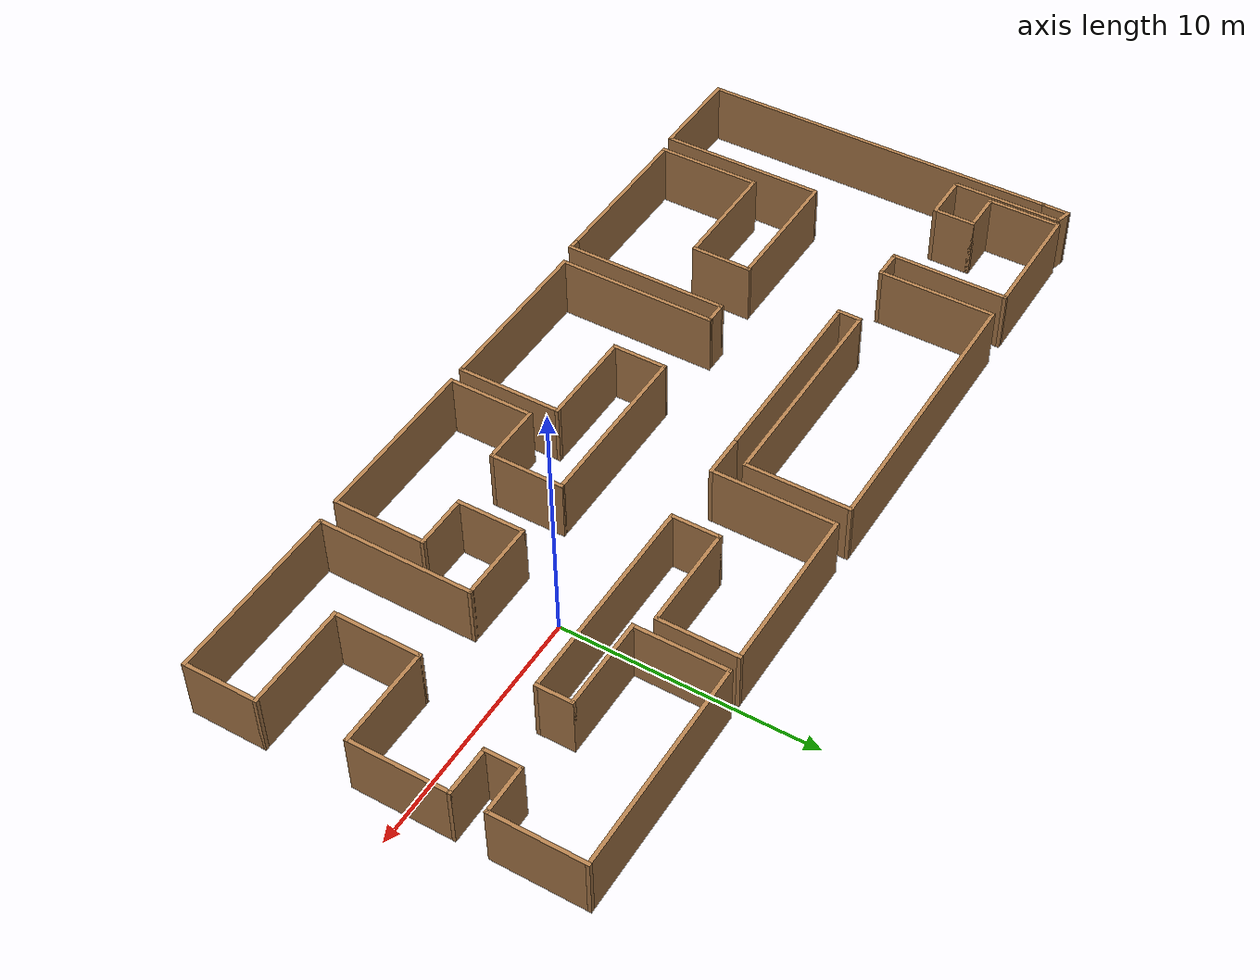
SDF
<?xml version='1.0'?>
<sdf version='1.6'>
  <model name='eight_comodos'>
    <pose frame=''>-8.40626 -0.864055 0 0 -0 0</pose>
    <link name='Wall_1'>
      <collision name='Wall_1_Collision'>
        <geometry>
          <box>
            <size>14.75 0.15 2.5</size>
          </box>
        </geometry>
        <pose frame=''>0 0 1.25 0 -0 0</pose>
      </collision>
      <visual name='Wall_1_Visual'>
        <pose frame=''>0 0 1.25 0 -0 0</pose>
        <geometry>
          <box>
            <size>14.75 0.15 2.5</size>
          </box>
        </geometry>
        <material>
          <script>
            <uri>file://media/materials/scripts/gazebo.material</uri>
            <name>Gazebo/Wood</name>
          </script>
          <ambient>1 1 1 1</ambient>
        </material>
        <meta>
          <layer>0</layer>
        </meta>
      </visual>
      <pose frame=''>-17.4243 -0.536073 0 0 -0 -1.5708</pose>
    </link>
    <link name='Wall_10'>
      <collision name='Wall_10_Collision'>
        <geometry>
          <box>
            <size>0.5 0.15 2.5</size>
          </box>
        </geometry>
        <pose frame=''>0 0 1.25 0 -0 0</pose>
      </collision>
      <visual name='Wall_10_Visual'>
        <pose frame=''>0 0 1.25 0 -0 0</pose>
        <geometry>
          <box>
            <size>0.5 0.15 2.5</size>
          </box>
        </geometry>
        <material>
          <script>
            <uri>file://media/materials/scripts/gazebo.material</uri>
            <name>Gazebo/Wood</name>
          </script>
          <ambient>1 1 1 1</ambient>
        </material>
        <meta>
          <layer>0</layer>
        </meta>
      </visual>
      <pose frame=''>-6.04928 -7.68607 0 0 -0 0</pose>
    </link>
    <link name='Wall_11'>
      <collision name='Wall_11_Collision'>
        <geometry>
          <box>
            <size>6.75 0.15 2.5</size>
          </box>
        </geometry>
        <pose frame=''>0 0 1.25 0 -0 0</pose>
      </collision>
      <visual name='Wall_11_Visual'>
        <pose frame=''>0 0 1.25 0 -0 0</pose>
        <geometry>
          <box>
            <size>6.75 0.15 2.5</size>
          </box>
        </geometry>
        <material>
          <script>
            <uri>file://media/materials/scripts/gazebo.material</uri>
            <name>Gazebo/Wood</name>
          </script>
          <ambient>1 1 1 1</ambient>
        </material>
        <meta>
          <layer>0</layer>
        </meta>
      </visual>
      <pose frame=''>-5.87428 -4.38607 0 0 -0 1.5708</pose>
    </link>
    <link name='Wall_12'>
      <collision name='Wall_12_Collision'>
        <geometry>
          <box>
            <size>1 0.15 2.5</size>
          </box>
        </geometry>
        <pose frame=''>0 0 1.25 0 -0 0</pose>
      </collision>
      <visual name='Wall_12_Visual'>
        <pose frame=''>0 0 1.25 0 -0 0</pose>
        <geometry>
          <box>
            <size>1 0.15 2.5</size>
          </box>
        </geometry>
        <material>
          <script>
            <uri>file://media/materials/scripts/gazebo.material</uri>
            <name>Gazebo/Wood</name>
          </script>
          <ambient>1 1 1 1</ambient>
        </material>
        <meta>
          <layer>0</layer>
        </meta>
      </visual>
      <pose frame=''>-5.44928 -1.08607 0 0 -0 0</pose>
    </link>
    <link name='Wall_13'>
      <collision name='Wall_13_Collision'>
        <geometry>
          <box>
            <size>6.5 0.15 2.5</size>
          </box>
        </geometry>
        <pose frame=''>0 0 1.25 0 -0 0</pose>
      </collision>
      <visual name='Wall_13_Visual'>
        <pose frame=''>0 0 1.25 0 -0 0</pose>
        <geometry>
          <box>
            <size>6.5 0.15 2.5</size>
          </box>
        </geometry>
        <material>
          <script>
            <uri>file://media/materials/scripts/gazebo.material</uri>
            <name>Gazebo/Wood</name>
          </script>
          <ambient>1 1 1 1</ambient>
        </material>
        <meta>
          <layer>0</layer>
        </meta>
      </visual>
      <pose frame=''>-5.02428 -4.26107 0 0 -0 -1.5708</pose>
    </link>
    <link name='Wall_14'>
      <collision name='Wall_14_Collision'>
        <geometry>
          <box>
            <size>7 0.15 2.5</size>
          </box>
        </geometry>
        <pose frame=''>0 0 1.25 0 -0 0</pose>
      </collision>
      <visual name='Wall_14_Visual'>
        <pose frame=''>0 0 1.25 0 -0 0</pose>
        <geometry>
          <box>
            <size>7 0.15 2.5</size>
          </box>
        </geometry>
        <material>
          <script>
            <uri>file://media/materials/scripts/gazebo.material</uri>
            <name>Gazebo/Wood</name>
          </script>
          <ambient>1 1 1 1</ambient>
        </material>
        <meta>
          <layer>0</layer>
        </meta>
      </visual>
      <pose frame=''>-1.59928 -7.43607 0 0 -0 0</pose>
    </link>
    <link name='Wall_15'>
      <collision name='Wall_15_Collision'>
        <geometry>
          <box>
            <size>4.25 0.15 2.5</size>
          </box>
        </geometry>
        <pose frame=''>0 0 1.25 0 -0 0</pose>
      </collision>
      <visual name='Wall_15_Visual'>
        <pose frame=''>0 0 1.25 0 -0 0</pose>
        <geometry>
          <box>
            <size>4.25 0.15 2.5</size>
          </box>
        </geometry>
        <material>
          <script>
            <uri>file://media/materials/scripts/gazebo.material</uri>
            <name>Gazebo/Wood</name>
          </script>
          <ambient>1 1 1 1</ambient>
        </material>
        <meta>
          <layer>0</layer>
        </meta>
      </visual>
      <pose frame=''>1.82572 -5.38607 0 0 -0 1.5708</pose>
    </link>
    <link name='Wall_16'>
      <collision name='Wall_16_Collision'>
        <geometry>
          <box>
            <size>4 0.15 2.5</size>
          </box>
        </geometry>
        <pose frame=''>0 0 1.25 0 -0 0</pose>
      </collision>
      <visual name='Wall_16_Visual'>
        <pose frame=''>0 0 1.25 0 -0 0</pose>
        <geometry>
          <box>
            <size>4 0.15 2.5</size>
          </box>
        </geometry>
        <material>
          <script>
            <uri>file://media/materials/scripts/gazebo.material</uri>
            <name>Gazebo/Wood</name>
          </script>
          <ambient>1 1 1 1</ambient>
        </material>
        <meta>
          <layer>0</layer>
        </meta>
      </visual>
      <pose frame=''>-0.09928 -3.33607 0 0 -0 3.14159</pose>
    </link>
    <link name='Wall_17'>
      <collision name='Wall_17_Collision'>
        <geometry>
          <box>
            <size>2.25 0.15 2.5</size>
          </box>
        </geometry>
        <pose frame=''>0 0 1.25 0 -0 0</pose>
      </collision>
      <visual name='Wall_17_Visual'>
        <pose frame=''>0 0 1.25 0 -0 0</pose>
        <geometry>
          <box>
            <size>2.25 0.15 2.5</size>
          </box>
        </geometry>
        <material>
          <script>
            <uri>file://media/materials/scripts/gazebo.material</uri>
            <name>Gazebo/Wood</name>
          </script>
          <ambient>1 1 1 1</ambient>
        </material>
        <meta>
          <layer>0</layer>
        </meta>
      </visual>
      <pose frame=''>-2.02428 -2.28607 0 0 -0 1.5708</pose>
    </link>
    <link name='Wall_18'>
      <collision name='Wall_18_Collision'>
        <geometry>
          <box>
            <size>7 0.15 2.5</size>
          </box>
        </geometry>
        <pose frame=''>0 0 1.25 0 -0 0</pose>
      </collision>
      <visual name='Wall_18_Visual'>
        <pose frame=''>0 0 1.25 0 -0 0</pose>
        <geometry>
          <box>
            <size>7 0.15 2.5</size>
          </box>
        </geometry>
        <material>
          <script>
            <uri>file://media/materials/scripts/gazebo.material</uri>
            <name>Gazebo/Wood</name>
          </script>
          <ambient>1 1 1 1</ambient>
        </material>
        <meta>
          <layer>0</layer>
        </meta>
      </visual>
      <pose frame=''>1.40072 -1.23607 0 0 -0 0</pose>
    </link>
    <link name='Wall_19'>
      <collision name='Wall_19_Collision'>
        <geometry>
          <box>
            <size>3 0.15 2.5</size>
          </box>
        </geometry>
        <pose frame=''>0 0 1.25 0 -0 0</pose>
      </collision>
      <visual name='Wall_19_Visual'>
        <pose frame=''>0 0 1.25 0 -0 0</pose>
        <geometry>
          <box>
            <size>3 0.15 2.5</size>
          </box>
        </geometry>
        <material>
          <script>
            <uri>file://media/materials/scripts/gazebo.material</uri>
            <name>Gazebo/Wood</name>
          </script>
          <ambient>1 1 1 1</ambient>
        </material>
        <meta>
          <layer>0</layer>
        </meta>
      </visual>
      <pose frame=''>4.82572 -2.66107 0 0 -0 -1.5708</pose>
    </link>
    <link name='Wall_2'>
      <collision name='Wall_2_Collision'>
        <geometry>
          <box>
            <size>4 0.15 2.5</size>
          </box>
        </geometry>
        <pose frame=''>0 0 1.25 0 -0 0</pose>
      </collision>
      <visual name='Wall_2_Visual'>
        <pose frame=''>0 0 1.25 0 -0 0</pose>
        <geometry>
          <box>
            <size>4 0.15 2.5</size>
          </box>
        </geometry>
        <material>
          <script>
            <uri>file://media/materials/scripts/gazebo.material</uri>
            <name>Gazebo/Wood</name>
          </script>
          <ambient>1 1 1 1</ambient>
        </material>
        <meta>
          <layer>0</layer>
        </meta>
      </visual>
      <pose frame=''>-15.4993 -7.83607 0 0 -0 0</pose>
    </link>
    <link name='Wall_20'>
      <collision name='Wall_20_Collision'>
        <geometry>
          <box>
            <size>2.5 0.15 2.5</size>
          </box>
        </geometry>
        <pose frame=''>0 0 1.25 0 -0 0</pose>
      </collision>
      <visual name='Wall_20_Visual'>
        <pose frame=''>0 0 1.25 0 -0 0</pose>
        <geometry>
          <box>
            <size>2.5 0.15 2.5</size>
          </box>
        </geometry>
        <material>
          <script>
            <uri>file://media/materials/scripts/gazebo.material</uri>
            <name>Gazebo/Wood</name>
          </script>
          <ambient>1 1 1 1</ambient>
        </material>
        <meta>
          <layer>0</layer>
        </meta>
      </visual>
      <pose frame=''>3.65072 -4.08607 0 0 -0 3.14159</pose>
    </link>
    <link name='Wall_21'>
      <collision name='Wall_21_Collision'>
        <geometry>
          <box>
            <size>3.5 0.15 2.5</size>
          </box>
        </geometry>
        <pose frame=''>0 0 1.25 0 -0 0</pose>
      </collision>
      <visual name='Wall_21_Visual'>
        <pose frame=''>0 0 1.25 0 -0 0</pose>
        <geometry>
          <box>
            <size>3.5 0.15 2.5</size>
          </box>
        </geometry>
        <material>
          <script>
            <uri>file://media/materials/scripts/gazebo.material</uri>
            <name>Gazebo/Wood</name>
          </script>
          <ambient>1 1 1 1</ambient>
        </material>
        <meta>
          <layer>0</layer>
        </meta>
      </visual>
      <pose frame=''>2.47572 -5.76107 0 0 -0 -1.5708</pose>
    </link>
    <link name='Wall_22'>
      <collision name='Wall_22_Collision'>
        <geometry>
          <box>
            <size>7 0.15 2.5</size>
          </box>
        </geometry>
        <pose frame=''>0 0 1.25 0 -0 0</pose>
      </collision>
      <visual name='Wall_22_Visual'>
        <pose frame=''>0 0 1.25 0 -0 0</pose>
        <geometry>
          <box>
            <size>7 0.15 2.5</size>
          </box>
        </geometry>
        <material>
          <script>
            <uri>file://media/materials/scripts/gazebo.material</uri>
            <name>Gazebo/Wood</name>
          </script>
          <ambient>1 1 1 1</ambient>
        </material>
        <meta>
          <layer>0</layer>
        </meta>
      </visual>
      <pose frame=''>5.90072 -7.43607 0 0 -0 0</pose>
    </link>
    <link name='Wall_23'>
      <collision name='Wall_23_Collision'>
        <geometry>
          <box>
            <size>3.75 0.15 2.5</size>
          </box>
        </geometry>
        <pose frame=''>0 0 1.25 0 -0 0</pose>
      </collision>
      <visual name='Wall_23_Visual'>
        <pose frame=''>0 0 1.25 0 -0 0</pose>
        <geometry>
          <box>
            <size>3.75 0.15 2.5</size>
          </box>
        </geometry>
        <material>
          <script>
            <uri>file://media/materials/scripts/gazebo.material</uri>
            <name>Gazebo/Wood</name>
          </script>
          <ambient>1 1 1 1</ambient>
        </material>
        <meta>
          <layer>0</layer>
        </meta>
      </visual>
      <pose frame=''>9.32572 -5.63607 0 0 -0 1.5708</pose>
    </link>
    <link name='Wall_24'>
      <collision name='Wall_24_Collision'>
        <geometry>
          <box>
            <size>2.25 0.15 2.5</size>
          </box>
        </geometry>
        <pose frame=''>0 0 1.25 0 -0 0</pose>
      </collision>
      <visual name='Wall_24_Visual'>
        <pose frame=''>0 0 1.25 0 -0 0</pose>
        <geometry>
          <box>
            <size>2.25 0.15 2.5</size>
          </box>
        </geometry>
        <material>
          <script>
            <uri>file://media/materials/scripts/gazebo.material</uri>
            <name>Gazebo/Wood</name>
          </script>
          <ambient>1 1 1 1</ambient>
        </material>
        <meta>
          <layer>0</layer>
        </meta>
      </visual>
      <pose frame=''>8.27572 -3.83607 0 0 -0 3.14159</pose>
    </link>
    <link name='Wall_25'>
      <collision name='Wall_25_Collision'>
        <geometry>
          <box>
            <size>2.75 0.15 2.5</size>
          </box>
        </geometry>
        <pose frame=''>0 0 1.25 0 -0 0</pose>
      </collision>
      <visual name='Wall_25_Visual'>
        <pose frame=''>0 0 1.25 0 -0 0</pose>
        <geometry>
          <box>
            <size>2.75 0.15 2.5</size>
          </box>
        </geometry>
        <material>
          <script>
            <uri>file://media/materials/scripts/gazebo.material</uri>
            <name>Gazebo/Wood</name>
          </script>
          <ambient>1 1 1 1</ambient>
        </material>
        <meta>
          <layer>0</layer>
        </meta>
      </visual>
      <pose frame=''>7.22572 -2.53607 0 0 -0 1.5708</pose>
    </link>
    <link name='Wall_26'>
      <collision name='Wall_26_Collision'>
        <geometry>
          <box>
            <size>3.25 0.15 2.5</size>
          </box>
        </geometry>
        <pose frame=''>0 0 1.25 0 -0 0</pose>
      </collision>
      <visual name='Wall_26_Visual'>
        <pose frame=''>0 0 1.25 0 -0 0</pose>
        <geometry>
          <box>
            <size>3.25 0.15 2.5</size>
          </box>
        </geometry>
        <material>
          <script>
            <uri>file://media/materials/scripts/gazebo.material</uri>
            <name>Gazebo/Wood</name>
          </script>
          <ambient>1 1 1 1</ambient>
        </material>
        <meta>
          <layer>0</layer>
        </meta>
      </visual>
      <pose frame=''>8.77572 -1.23607 0 0 -0 0</pose>
    </link>
    <link name='Wall_27'>
      <collision name='Wall_27_Collision'>
        <geometry>
          <box>
            <size>6.25 0.15 2.5</size>
          </box>
        </geometry>
        <pose frame=''>0 0 1.25 0 -0 0</pose>
      </collision>
      <visual name='Wall_27_Visual'>
        <pose frame=''>0 0 1.25 0 -0 0</pose>
        <geometry>
          <box>
            <size>6.25 0.15 2.5</size>
          </box>
        </geometry>
        <material>
          <script>
            <uri>file://media/materials/scripts/gazebo.material</uri>
            <name>Gazebo/Wood</name>
          </script>
          <ambient>1 1 1 1</ambient>
        </material>
        <meta>
          <layer>0</layer>
        </meta>
      </visual>
      <pose frame=''>10.3257 -4.28607 0 0 -0 -1.5708</pose>
    </link>
    <link name='Wall_28'>
      <collision name='Wall_28_Collision'>
        <geometry>
          <box>
            <size>7.25 0.15 2.5</size>
          </box>
        </geometry>
        <pose frame=''>0 0 1.25 0 -0 0</pose>
      </collision>
      <visual name='Wall_28_Visual'>
        <pose frame=''>0 0 1.25 0 -0 0</pose>
        <geometry>
          <box>
            <size>7.25 0.15 2.5</size>
          </box>
        </geometry>
        <material>
          <script>
            <uri>file://media/materials/scripts/gazebo.material</uri>
            <name>Gazebo/Wood</name>
          </script>
          <ambient>1 1 1 1</ambient>
        </material>
        <meta>
          <layer>0</layer>
        </meta>
      </visual>
      <pose frame=''>13.8757 -7.33607 0 0 -0 0</pose>
    </link>
    <link name='Wall_29'>
      <collision name='Wall_29_Collision'>
        <geometry>
          <box>
            <size>3 0.15 2.5</size>
          </box>
        </geometry>
        <pose frame=''>0 0 1.25 0 -0 0</pose>
      </collision>
      <visual name='Wall_29_Visual'>
        <pose frame=''>0 0 1.25 0 -0 0</pose>
        <geometry>
          <box>
            <size>3 0.15 2.5</size>
          </box>
        </geometry>
        <material>
          <script>
            <uri>file://media/materials/scripts/gazebo.material</uri>
            <name>Gazebo/Wood</name>
          </script>
          <ambient>1 1 1 1</ambient>
        </material>
        <meta>
          <layer>0</layer>
        </meta>
      </visual>
      <pose frame=''>17.4257 -5.91107 0 0 -0 1.5708</pose>
    </link>
    <link name='Wall_3'>
      <collision name='Wall_3_Collision'>
        <geometry>
          <box>
            <size>6.75 0.15 2.5</size>
          </box>
        </geometry>
        <pose frame=''>0 0 1.25 0 -0 0</pose>
      </collision>
      <visual name='Wall_3_Visual'>
        <pose frame=''>0 0 1.25 0 -0 0</pose>
        <geometry>
          <box>
            <size>6.75 0.15 2.5</size>
          </box>
        </geometry>
        <material>
          <script>
            <uri>file://media/materials/scripts/gazebo.material</uri>
            <name>Gazebo/Wood</name>
          </script>
          <ambient>1 1 1 1</ambient>
        </material>
        <meta>
          <layer>0</layer>
        </meta>
      </visual>
      <pose frame=''>-13.5743 -4.53607 0 0 -0 1.5708</pose>
    </link>
    <link name='Wall_30'>
      <collision name='Wall_30_Collision'>
        <geometry>
          <box>
            <size>4.25 0.15 2.5</size>
          </box>
        </geometry>
        <pose frame=''>0 0 1.25 0 -0 0</pose>
      </collision>
      <visual name='Wall_30_Visual'>
        <pose frame=''>0 0 1.25 0 -0 0</pose>
        <geometry>
          <box>
            <size>4.25 0.15 2.5</size>
          </box>
        </geometry>
        <material>
          <script>
            <uri>file://media/materials/scripts/gazebo.material</uri>
            <name>Gazebo/Wood</name>
          </script>
          <ambient>1 1 1 1</ambient>
        </material>
        <meta>
          <layer>0</layer>
        </meta>
      </visual>
      <pose frame=''>15.3757 -4.48607 0 0 -0 3.14159</pose>
    </link>
    <link name='Wall_31'>
      <collision name='Wall_31_Collision'>
        <geometry>
          <box>
            <size>3.5 0.15 2.5</size>
          </box>
        </geometry>
        <pose frame=''>0 0 1.25 0 -0 0</pose>
      </collision>
      <visual name='Wall_31_Visual'>
        <pose frame=''>0 0 1.25 0 -0 0</pose>
        <geometry>
          <box>
            <size>3.5 0.15 2.5</size>
          </box>
        </geometry>
        <material>
          <script>
            <uri>file://media/materials/scripts/gazebo.material</uri>
            <name>Gazebo/Wood</name>
          </script>
          <ambient>1 1 1 1</ambient>
        </material>
        <meta>
          <layer>0</layer>
        </meta>
      </visual>
      <pose frame=''>13.3257 -2.81107 0 0 -0 1.5708</pose>
    </link>
    <link name='Wall_32'>
      <collision name='Wall_32_Collision'>
        <geometry>
          <box>
            <size>4 0.15 2.5</size>
          </box>
        </geometry>
        <pose frame=''>0 0 1.25 0 -0 0</pose>
      </collision>
      <visual name='Wall_32_Visual'>
        <pose frame=''>0 0 1.25 0 -0 0</pose>
        <geometry>
          <box>
            <size>4 0.15 2.5</size>
          </box>
        </geometry>
        <material>
          <script>
            <uri>file://media/materials/scripts/gazebo.material</uri>
            <name>Gazebo/Wood</name>
          </script>
          <ambient>1 1 1 1</ambient>
        </material>
        <meta>
          <layer>0</layer>
        </meta>
      </visual>
      <pose frame=''>15.2507 -1.13607 0 0 -0 0</pose>
    </link>
    <link name='Wall_33'>
      <collision name='Wall_33_Collision'>
        <geometry>
          <box>
            <size>4 0.15 2.5</size>
          </box>
        </geometry>
        <pose frame=''>0 0 1.25 0 -0 0</pose>
      </collision>
      <visual name='Wall_33_Visual'>
        <pose frame=''>0 0 1.25 0 -0 0</pose>
        <geometry>
          <box>
            <size>4 0.15 2.5</size>
          </box>
        </geometry>
        <material>
          <script>
            <uri>file://media/materials/scripts/gazebo.material</uri>
            <name>Gazebo/Wood</name>
          </script>
          <ambient>1 1 1 1</ambient>
        </material>
        <meta>
          <layer>0</layer>
        </meta>
      </visual>
      <pose frame=''>17.1757 0.788927 0 0 -0 1.5708</pose>
    </link>
    <link name='Wall_34'>
      <collision name='Wall_34_Collision'>
        <geometry>
          <box>
            <size>2 0.15 2.5</size>
          </box>
        </geometry>
        <pose frame=''>0 0 1.25 0 -0 0</pose>
      </collision>
      <visual name='Wall_34_Visual'>
        <pose frame=''>0 0 1.25 0 -0 0</pose>
        <geometry>
          <box>
            <size>2 0.15 2.5</size>
          </box>
        </geometry>
        <material>
          <script>
            <uri>file://media/materials/scripts/gazebo.material</uri>
            <name>Gazebo/Wood</name>
          </script>
          <ambient>1 1 1 1</ambient>
        </material>
        <meta>
          <layer>0</layer>
        </meta>
      </visual>
      <pose frame=''>16.2507 2.71393 0 0 -0 3.14159</pose>
    </link>
    <link name='Wall_35'>
      <collision name='Wall_35_Collision'>
        <geometry>
          <box>
            <size>1.5 0.15 2.5</size>
          </box>
        </geometry>
        <pose frame=''>0 0 1.25 0 -0 0</pose>
      </collision>
      <visual name='Wall_35_Visual'>
        <pose frame=''>0 0 1.25 0 -0 0</pose>
        <geometry>
          <box>
            <size>1.5 0.15 2.5</size>
          </box>
        </geometry>
        <material>
          <script>
            <uri>file://media/materials/scripts/gazebo.material</uri>
            <name>Gazebo/Wood</name>
          </script>
          <ambient>1 1 1 1</ambient>
        </material>
        <meta>
          <layer>0</layer>
        </meta>
      </visual>
      <pose frame=''>15.3257 3.38893 0 0 -0 1.5708</pose>
    </link>
    <link name='Wall_36'>
      <collision name='Wall_36_Collision'>
        <geometry>
          <box>
            <size>2 0.15 2.5</size>
          </box>
        </geometry>
        <pose frame=''>0 0 1.25 0 -0 0</pose>
      </collision>
      <visual name='Wall_36_Visual'>
        <pose frame=''>0 0 1.25 0 -0 0</pose>
        <geometry>
          <box>
            <size>2 0.15 2.5</size>
          </box>
        </geometry>
        <material>
          <script>
            <uri>file://media/materials/scripts/gazebo.material</uri>
            <name>Gazebo/Wood</name>
          </script>
          <ambient>1 1 1 1</ambient>
        </material>
        <meta>
          <layer>0</layer>
        </meta>
      </visual>
      <pose frame=''>16.2507 4.06393 0 0 -0 0</pose>
    </link>
    <link name='Wall_37'>
      <collision name='Wall_37_Collision'>
        <geometry>
          <box>
            <size>3.75 0.15 2.5</size>
          </box>
        </geometry>
        <pose frame=''>0 0 1.25 0 -0 0</pose>
      </collision>
      <visual name='Wall_37_Visual'>
        <pose frame=''>0 0 1.25 0 -0 0</pose>
        <geometry>
          <box>
            <size>3.75 0.15 2.5</size>
          </box>
        </geometry>
        <material>
          <script>
            <uri>file://media/materials/scripts/gazebo.material</uri>
            <name>Gazebo/Wood</name>
          </script>
          <ambient>1 1 1 1</ambient>
        </material>
        <meta>
          <layer>0</layer>
        </meta>
      </visual>
      <pose frame=''>17.1757 5.86393 0 0 -0 1.5708</pose>
    </link>
    <link name='Wall_38'>
      <collision name='Wall_38_Collision'>
        <geometry>
          <box>
            <size>8.5 0.15 2.5</size>
          </box>
        </geometry>
        <pose frame=''>0 0 1.25 0 -0 0</pose>
      </collision>
      <visual name='Wall_38_Visual'>
        <pose frame=''>0 0 1.25 0 -0 0</pose>
        <geometry>
          <box>
            <size>8.5 0.15 2.5</size>
          </box>
        </geometry>
        <material>
          <script>
            <uri>file://media/materials/scripts/gazebo.material</uri>
            <name>Gazebo/Wood</name>
          </script>
          <ambient>1 1 1 1</ambient>
        </material>
        <meta>
          <layer>0</layer>
        </meta>
      </visual>
      <pose frame=''>13.0007 7.66393 0 0 -0 3.14159</pose>
    </link>
    <link name='Wall_39'>
      <collision name='Wall_39_Collision'>
        <geometry>
          <box>
            <size>3.75 0.15 2.5</size>
          </box>
        </geometry>
        <pose frame=''>0 0 1.25 0 -0 0</pose>
      </collision>
      <visual name='Wall_39_Visual'>
        <pose frame=''>0 0 1.25 0 -0 0</pose>
        <geometry>
          <box>
            <size>3.75 0.15 2.5</size>
          </box>
        </geometry>
        <material>
          <script>
            <uri>file://media/materials/scripts/gazebo.material</uri>
            <name>Gazebo/Wood</name>
          </script>
          <ambient>1 1 1 1</ambient>
        </material>
        <meta>
          <layer>0</layer>
        </meta>
      </visual>
      <pose frame=''>8.82572 5.86393 0 0 -0 -1.5708</pose>
    </link>
    <link name='Wall_4'>
      <collision name='Wall_4_Collision'>
        <geometry>
          <box>
            <size>5.5 0.15 2.5</size>
          </box>
        </geometry>
        <pose frame=''>0 0 1.25 0 -0 0</pose>
      </collision>
      <visual name='Wall_4_Visual'>
        <pose frame=''>0 0 1.25 0 -0 0</pose>
        <geometry>
          <box>
            <size>5.5 0.15 2.5</size>
          </box>
        </geometry>
        <material>
          <script>
            <uri>file://media/materials/scripts/gazebo.material</uri>
            <name>Gazebo/Wood</name>
          </script>
          <ambient>1 1 1 1</ambient>
        </material>
        <meta>
          <layer>0</layer>
        </meta>
      </visual>
      <pose frame=''>-10.8993 -1.23607 0 0 -0 0</pose>
    </link>
    <link name='Wall_40'>
      <collision name='Wall_40_Collision'>
        <geometry>
          <box>
            <size>3.75 0.15 2.5</size>
          </box>
        </geometry>
        <pose frame=''>0 0 1.25 0 -0 0</pose>
      </collision>
      <visual name='Wall_40_Visual'>
        <pose frame=''>0 0 1.25 0 -0 0</pose>
        <geometry>
          <box>
            <size>3.75 0.15 2.5</size>
          </box>
        </geometry>
        <material>
          <script>
            <uri>file://media/materials/scripts/gazebo.material</uri>
            <name>Gazebo/Wood</name>
          </script>
          <ambient>1 1 1 1</ambient>
        </material>
        <meta>
          <layer>0</layer>
        </meta>
      </visual>
      <pose frame=''>10.6257 4.06393 0 0 -0 0</pose>
    </link>
    <link name='Wall_41'>
      <collision name='Wall_41_Collision'>
        <geometry>
          <box>
            <size>1.5 0.15 2.5</size>
          </box>
        </geometry>
        <pose frame=''>0 0 1.25 0 -0 0</pose>
      </collision>
      <visual name='Wall_41_Visual'>
        <pose frame=''>0 0 1.25 0 -0 0</pose>
        <geometry>
          <box>
            <size>1.5 0.15 2.5</size>
          </box>
        </geometry>
        <material>
          <script>
            <uri>file://media/materials/scripts/gazebo.material</uri>
            <name>Gazebo/Wood</name>
          </script>
          <ambient>1 1 1 1</ambient>
        </material>
        <meta>
          <layer>0</layer>
        </meta>
      </visual>
      <pose frame=''>12.4257 3.38893 0 0 -0 -1.5708</pose>
    </link>
    <link name='Wall_42'>
      <collision name='Wall_42_Collision'>
        <geometry>
          <box>
            <size>8.5 0.15 2.5</size>
          </box>
        </geometry>
        <pose frame=''>0 0 1.25 0 -0 0</pose>
      </collision>
      <visual name='Wall_42_Visual'>
        <pose frame=''>0 0 1.25 0 -0 0</pose>
        <geometry>
          <box>
            <size>8.5 0.15 2.5</size>
          </box>
        </geometry>
        <material>
          <script>
            <uri>file://media/materials/scripts/gazebo.material</uri>
            <name>Gazebo/Wood</name>
          </script>
          <ambient>1 1 1 1</ambient>
        </material>
        <meta>
          <layer>0</layer>
        </meta>
      </visual>
      <pose frame=''>8.25072 2.71393 0 0 -0 3.14159</pose>
    </link>
    <link name='Wall_43'>
      <collision name='Wall_43_Collision'>
        <geometry>
          <box>
            <size>2 0.15 2.5</size>
          </box>
        </geometry>
        <pose frame=''>0 0 1.25 0 -0 0</pose>
      </collision>
      <visual name='Wall_43_Visual'>
        <pose frame=''>0 0 1.25 0 -0 0</pose>
        <geometry>
          <box>
            <size>2 0.15 2.5</size>
          </box>
        </geometry>
        <material>
          <script>
            <uri>file://media/materials/scripts/gazebo.material</uri>
            <name>Gazebo/Wood</name>
          </script>
          <ambient>1 1 1 1</ambient>
        </material>
        <meta>
          <layer>0</layer>
        </meta>
      </visual>
      <pose frame=''>4.07572 3.63893 0 0 -0 1.5708</pose>
    </link>
    <link name='Wall_44'>
      <collision name='Wall_44_Collision'>
        <geometry>
          <box>
            <size>4.25 0.15 2.5</size>
          </box>
        </geometry>
        <pose frame=''>0 0 1.25 0 -0 0</pose>
      </collision>
      <visual name='Wall_44_Visual'>
        <pose frame=''>0 0 1.25 0 -0 0</pose>
        <geometry>
          <box>
            <size>4.25 0.15 2.5</size>
          </box>
        </geometry>
        <material>
          <script>
            <uri>file://media/materials/scripts/gazebo.material</uri>
            <name>Gazebo/Wood</name>
          </script>
          <ambient>1 1 1 1</ambient>
        </material>
        <meta>
          <layer>0</layer>
        </meta>
      </visual>
      <pose frame=''>6.12572 4.56393 0 0 -0 0</pose>
    </link>
    <link name='Wall_45'>
      <collision name='Wall_45_Collision'>
        <geometry>
          <box>
            <size>3.25 0.15 2.5</size>
          </box>
        </geometry>
        <pose frame=''>0 0 1.25 0 -0 0</pose>
      </collision>
      <visual name='Wall_45_Visual'>
        <pose frame=''>0 0 1.25 0 -0 0</pose>
        <geometry>
          <box>
            <size>3.25 0.15 2.5</size>
          </box>
        </geometry>
        <material>
          <script>
            <uri>file://media/materials/scripts/gazebo.material</uri>
            <name>Gazebo/Wood</name>
          </script>
          <ambient>1 1 1 1</ambient>
        </material>
        <meta>
          <layer>0</layer>
        </meta>
      </visual>
      <pose frame=''>8.17572 6.11393 0 0 -0 1.5708</pose>
    </link>
    <link name='Wall_46'>
      <collision name='Wall_46_Collision'>
        <geometry>
          <box>
            <size>6.75 0.15 2.5</size>
          </box>
        </geometry>
        <pose frame=''>0 0 1.25 0 -0 0</pose>
      </collision>
      <visual name='Wall_46_Visual'>
        <pose frame=''>0 0 1.25 0 -0 0</pose>
        <geometry>
          <box>
            <size>6.75 0.15 2.5</size>
          </box>
        </geometry>
        <material>
          <script>
            <uri>file://media/materials/scripts/gazebo.material</uri>
            <name>Gazebo/Wood</name>
          </script>
          <ambient>1 1 1 1</ambient>
        </material>
        <meta>
          <layer>0</layer>
        </meta>
      </visual>
      <pose frame=''>4.87572 7.66393 0 0 -0 3.14159</pose>
    </link>
    <link name='Wall_47'>
      <collision name='Wall_47_Collision'>
        <geometry>
          <box>
            <size>5 0.15 2.5</size>
          </box>
        </geometry>
        <pose frame=''>0 0 1.25 0 -0 0</pose>
      </collision>
      <visual name='Wall_47_Visual'>
        <pose frame=''>0 0 1.25 0 -0 0</pose>
        <geometry>
          <box>
            <size>5 0.15 2.5</size>
          </box>
        </geometry>
        <material>
          <script>
            <uri>file://media/materials/scripts/gazebo.material</uri>
            <name>Gazebo/Wood</name>
          </script>
          <ambient>1 1 1 1</ambient>
        </material>
        <meta>
          <layer>0</layer>
        </meta>
      </visual>
      <pose frame=''>1.57572 5.23893 0 0 -0 -1.5708</pose>
    </link>
    <link name='Wall_48'>
      <collision name='Wall_48_Collision'>
        <geometry>
          <box>
            <size>1.75 0.15 2.5</size>
          </box>
        </geometry>
        <pose frame=''>0 0 1.25 0 -0 0</pose>
      </collision>
      <visual name='Wall_48_Visual'>
        <pose frame=''>0 0 1.25 0 -0 0</pose>
        <geometry>
          <box>
            <size>1.75 0.15 2.5</size>
          </box>
        </geometry>
        <material>
          <script>
            <uri>file://media/materials/scripts/gazebo.material</uri>
            <name>Gazebo/Wood</name>
          </script>
          <ambient>1 1 1 1</ambient>
        </material>
        <meta>
          <layer>0</layer>
        </meta>
      </visual>
      <pose frame=''>0.775719 2.81393 0 0 -0 3.14159</pose>
    </link>
    <link name='Wall_49'>
      <collision name='Wall_49_Collision'>
        <geometry>
          <box>
            <size>8 0.15 2.5</size>
          </box>
        </geometry>
        <pose frame=''>0 0 1.25 0 -0 0</pose>
      </collision>
      <visual name='Wall_49_Visual'>
        <pose frame=''>0 0 1.25 0 -0 0</pose>
        <geometry>
          <box>
            <size>8 0.15 2.5</size>
          </box>
        </geometry>
        <material>
          <script>
            <uri>file://media/materials/scripts/gazebo.material</uri>
            <name>Gazebo/Wood</name>
          </script>
          <ambient>1 1 1 1</ambient>
        </material>
        <meta>
          <layer>0</layer>
        </meta>
      </visual>
      <pose frame=''>-3.94928 2.81393 0 0 -0 3.14159</pose>
    </link>
    <link name='Wall_5'>
      <collision name='Wall_5_Collision'>
        <geometry>
          <box>
            <size>2.5 0.15 2.5</size>
          </box>
        </geometry>
        <pose frame=''>0 0 1.25 0 -0 0</pose>
      </collision>
      <visual name='Wall_5_Visual'>
        <pose frame=''>0 0 1.25 0 -0 0</pose>
        <geometry>
          <box>
            <size>2.5 0.15 2.5</size>
          </box>
        </geometry>
        <material>
          <script>
            <uri>file://media/materials/scripts/gazebo.material</uri>
            <name>Gazebo/Wood</name>
          </script>
          <ambient>1 1 1 1</ambient>
        </material>
        <meta>
          <layer>0</layer>
        </meta>
      </visual>
      <pose frame=''>-8.22428 -2.41107 0 0 -0 -1.5708</pose>
    </link>
    <link name='Wall_50'>
      <collision name='Wall_50_Collision'>
        <geometry>
          <box>
            <size>1 0.15 2.5</size>
          </box>
        </geometry>
        <pose frame=''>0 0 1.25 0 -0 0</pose>
      </collision>
      <visual name='Wall_50_Visual'>
        <pose frame=''>0 0 1.25 0 -0 0</pose>
        <geometry>
          <box>
            <size>1 0.15 2.5</size>
          </box>
        </geometry>
        <material>
          <script>
            <uri>file://media/materials/scripts/gazebo.material</uri>
            <name>Gazebo/Wood</name>
          </script>
          <ambient>1 1 1 1</ambient>
        </material>
        <meta>
          <layer>0</layer>
        </meta>
      </visual>
      <pose frame=''>-7.87428 3.23893 0 0 -0 1.5708</pose>
    </link>
    <link name='Wall_51'>
      <collision name='Wall_51_Collision'>
        <geometry>
          <box>
            <size>8.75 0.15 2.5</size>
          </box>
        </geometry>
        <pose frame=''>0 0 1.25 0 -0 0</pose>
      </collision>
      <visual name='Wall_51_Visual'>
        <pose frame=''>0 0 1.25 0 -0 0</pose>
        <geometry>
          <box>
            <size>8.75 0.15 2.5</size>
          </box>
        </geometry>
        <material>
          <script>
            <uri>file://media/materials/scripts/gazebo.material</uri>
            <name>Gazebo/Wood</name>
          </script>
          <ambient>1 1 1 1</ambient>
        </material>
        <meta>
          <layer>0</layer>
        </meta>
      </visual>
      <pose frame=''>-3.57428 3.66393 0 0 -0 0</pose>
    </link>
    <link name='Wall_52'>
      <collision name='Wall_52_Collision'>
        <geometry>
          <box>
            <size>4.25 0.15 2.5</size>
          </box>
        </geometry>
        <pose frame=''>0 0 1.25 0 -0 0</pose>
      </collision>
      <visual name='Wall_52_Visual'>
        <pose frame=''>0 0 1.25 0 -0 0</pose>
        <geometry>
          <box>
            <size>4.25 0.15 2.5</size>
          </box>
        </geometry>
        <material>
          <script>
            <uri>file://media/materials/scripts/gazebo.material</uri>
            <name>Gazebo/Wood</name>
          </script>
          <ambient>1 1 1 1</ambient>
        </material>
        <meta>
          <layer>0</layer>
        </meta>
      </visual>
      <pose frame=''>0.725719 5.71393 0 0 -0 1.5708</pose>
    </link>
    <link name='Wall_53'>
      <collision name='Wall_53_Collision'>
        <geometry>
          <box>
            <size>11.5 0.15 2.5</size>
          </box>
        </geometry>
        <pose frame=''>0 0 1.25 0 -0 0</pose>
      </collision>
      <visual name='Wall_53_Visual'>
        <pose frame=''>0 0 1.25 0 -0 0</pose>
        <geometry>
          <box>
            <size>11.5 0.15 2.5</size>
          </box>
        </geometry>
        <material>
          <script>
            <uri>file://media/materials/scripts/gazebo.material</uri>
            <name>Gazebo/Wood</name>
          </script>
          <ambient>1 1 1 1</ambient>
        </material>
        <meta>
          <layer>0</layer>
        </meta>
      </visual>
      <pose frame=''>-4.94928 7.76393 0 0 -0 3.14159</pose>
    </link>
    <link name='Wall_54'>
      <collision name='Wall_54_Collision'>
        <geometry>
          <box>
            <size>4.75 0.15 2.5</size>
          </box>
        </geometry>
        <pose frame=''>0 0 1.25 0 -0 0</pose>
      </collision>
      <visual name='Wall_54_Visual'>
        <pose frame=''>0 0 1.25 0 -0 0</pose>
        <geometry>
          <box>
            <size>4.75 0.15 2.5</size>
          </box>
        </geometry>
        <material>
          <script>
            <uri>file://media/materials/scripts/gazebo.material</uri>
            <name>Gazebo/Wood</name>
          </script>
          <ambient>1 1 1 1</ambient>
        </material>
        <meta>
          <layer>0</layer>
        </meta>
      </visual>
      <pose frame=''>-10.6243 5.46393 0 0 -0 -1.5708</pose>
    </link>
    <link name='Wall_55'>
      <collision name='Wall_55_Collision'>
        <geometry>
          <box>
            <size>1.25 0.15 2.5</size>
          </box>
        </geometry>
        <pose frame=''>0 0 1.25 0 -0 0</pose>
      </collision>
      <visual name='Wall_55_Visual'>
        <pose frame=''>0 0 1.25 0 -0 0</pose>
        <geometry>
          <box>
            <size>1.25 0.15 2.5</size>
          </box>
        </geometry>
        <material>
          <script>
            <uri>file://media/materials/scripts/gazebo.material</uri>
            <name>Gazebo/Wood</name>
          </script>
          <ambient>1 1 1 1</ambient>
        </material>
        <meta>
          <layer>0</layer>
        </meta>
      </visual>
      <pose frame=''>-11.1743 3.16393 0 0 -0 3.14159</pose>
    </link>
    <link name='Wall_56'>
      <collision name='Wall_56_Collision'>
        <geometry>
          <box>
            <size>4.75 0.15 2.5</size>
          </box>
        </geometry>
        <pose frame=''>0 0 1.25 0 -0 0</pose>
      </collision>
      <visual name='Wall_56_Visual'>
        <pose frame=''>0 0 1.25 0 -0 0</pose>
        <geometry>
          <box>
            <size>4.75 0.15 2.5</size>
          </box>
        </geometry>
        <material>
          <script>
            <uri>file://media/materials/scripts/gazebo.material</uri>
            <name>Gazebo/Wood</name>
          </script>
          <ambient>1 1 1 1</ambient>
        </material>
        <meta>
          <layer>0</layer>
        </meta>
      </visual>
      <pose frame=''>-11.7243 5.46393 0 0 -0 1.5708</pose>
    </link>
    <link name='Wall_57'>
      <collision name='Wall_57_Collision'>
        <geometry>
          <box>
            <size>5 0.15 2.5</size>
          </box>
        </geometry>
        <pose frame=''>0 0 1.25 0 -0 0</pose>
      </collision>
      <visual name='Wall_57_Visual'>
        <pose frame=''>0 0 1.25 0 -0 0</pose>
        <geometry>
          <box>
            <size>5 0.15 2.5</size>
          </box>
        </geometry>
        <material>
          <script>
            <uri>file://media/materials/scripts/gazebo.material</uri>
            <name>Gazebo/Wood</name>
          </script>
          <ambient>1 1 1 1</ambient>
        </material>
        <meta>
          <layer>0</layer>
        </meta>
      </visual>
      <pose frame=''>-14.1493 7.76393 0 0 -0 3.14159</pose>
    </link>
    <link name='Wall_58'>
      <collision name='Wall_58_Collision'>
        <geometry>
          <box>
            <size>3 0.15 2.5</size>
          </box>
        </geometry>
        <pose frame=''>0 0 1.25 0 -0 0</pose>
      </collision>
      <visual name='Wall_58_Visual'>
        <pose frame=''>0 0 1.25 0 -0 0</pose>
        <geometry>
          <box>
            <size>3 0.15 2.5</size>
          </box>
        </geometry>
        <material>
          <script>
            <uri>file://media/materials/scripts/gazebo.material</uri>
            <name>Gazebo/Wood</name>
          </script>
          <ambient>1 1 1 1</ambient>
        </material>
        <meta>
          <layer>0</layer>
        </meta>
      </visual>
      <pose frame=''>-16.5743 6.33893 0 0 -0 -1.5708</pose>
    </link>
    <link name='Wall_59'>
      <collision name='Wall_59_Collision'>
        <geometry>
          <box>
            <size>1.75 0.15 2.5</size>
          </box>
        </geometry>
        <pose frame=''>0 0 1.25 0 -0 0</pose>
      </collision>
      <visual name='Wall_59_Visual'>
        <pose frame=''>0 0 1.25 0 -0 0</pose>
        <geometry>
          <box>
            <size>1.75 0.15 2.5</size>
          </box>
        </geometry>
        <material>
          <script>
            <uri>file://media/materials/scripts/gazebo.material</uri>
            <name>Gazebo/Wood</name>
          </script>
          <ambient>1 1 1 1</ambient>
        </material>
        <meta>
          <layer>0</layer>
        </meta>
      </visual>
      <pose frame=''>-15.7743 4.91393 0 0 -0 0</pose>
    </link>
    <link name='Wall_6'>
      <collision name='Wall_6_Collision'>
        <geometry>
          <box>
            <size>4.75 0.15 2.5</size>
          </box>
        </geometry>
        <pose frame=''>0 0 1.25 0 -0 0</pose>
      </collision>
      <visual name='Wall_6_Visual'>
        <pose frame=''>0 0 1.25 0 -0 0</pose>
        <geometry>
          <box>
            <size>4.75 0.15 2.5</size>
          </box>
        </geometry>
        <material>
          <script>
            <uri>file://media/materials/scripts/gazebo.material</uri>
            <name>Gazebo/Wood</name>
          </script>
          <ambient>1 1 1 1</ambient>
        </material>
        <meta>
          <layer>0</layer>
        </meta>
      </visual>
      <pose frame=''>-10.5243 -3.58607 0 0 -0 3.14159</pose>
    </link>
    <link name='Wall_60'>
      <collision name='Wall_60_Collision'>
        <geometry>
          <box>
            <size>1.75 0.15 2.5</size>
          </box>
        </geometry>
        <pose frame=''>0 0 1.25 0 -0 0</pose>
      </collision>
      <visual name='Wall_60_Visual'>
        <pose frame=''>0 0 1.25 0 -0 0</pose>
        <geometry>
          <box>
            <size>1.75 0.15 2.5</size>
          </box>
        </geometry>
        <material>
          <script>
            <uri>file://media/materials/scripts/gazebo.material</uri>
            <name>Gazebo/Wood</name>
          </script>
          <ambient>1 1 1 1</ambient>
        </material>
        <meta>
          <layer>0</layer>
        </meta>
      </visual>
      <pose frame=''>-14.9743 4.11393 0 0 -0 -1.5708</pose>
    </link>
    <link name='Wall_61'>
      <collision name='Wall_61_Collision'>
        <geometry>
          <box>
            <size>2 0.15 2.5</size>
          </box>
        </geometry>
        <pose frame=''>0 0 1.25 0 -0 0</pose>
      </collision>
      <visual name='Wall_61_Visual'>
        <pose frame=''>0 0 1.25 0 -0 0</pose>
        <geometry>
          <box>
            <size>2 0.15 2.5</size>
          </box>
        </geometry>
        <material>
          <script>
            <uri>file://media/materials/scripts/gazebo.material</uri>
            <name>Gazebo/Wood</name>
          </script>
          <ambient>1 1 1 1</ambient>
        </material>
        <meta>
          <layer>0</layer>
        </meta>
      </visual>
      <pose frame=''>-15.8993 3.31393 0 0 -0 3.14159</pose>
    </link>
    <link name='Wall_62'>
      <collision name='Wall_62_Collision'>
        <geometry>
          <box>
            <size>4.5 0.15 2.5</size>
          </box>
        </geometry>
        <pose frame=''>0 0 1.25 0 -0 0</pose>
      </collision>
      <visual name='Wall_62_Visual'>
        <pose frame=''>0 0 1.25 0 -0 0</pose>
        <geometry>
          <box>
            <size>4.5 0.15 2.5</size>
          </box>
        </geometry>
        <material>
          <script>
            <uri>file://media/materials/scripts/gazebo.material</uri>
            <name>Gazebo/Wood</name>
          </script>
          <ambient>1 1 1 1</ambient>
        </material>
        <meta>
          <layer>0</layer>
        </meta>
      </visual>
      <pose frame=''>-16.8243 5.48893 0 0 -0 1.5708</pose>
    </link>
    <link name='Wall_63'>
      <collision name='Wall_63_Collision'>
        <geometry>
          <box>
            <size>0.75 0.15 2.5</size>
          </box>
        </geometry>
        <pose frame=''>0 0 1.25 0 -0 0</pose>
      </collision>
      <visual name='Wall_63_Visual'>
        <pose frame=''>0 0 1.25 0 -0 0</pose>
        <geometry>
          <box>
            <size>0.75 0.15 2.5</size>
          </box>
        </geometry>
        <material>
          <script>
            <uri>file://media/materials/scripts/gazebo.material</uri>
            <name>Gazebo/Wood</name>
          </script>
          <ambient>1 1 1 1</ambient>
        </material>
        <meta>
          <layer>0</layer>
        </meta>
      </visual>
      <pose frame=''>-17.1141 7.74157 0 0 -0 2.87979</pose>
    </link>
    <link name='Wall_64'>
      <collision name='Wall_64_Collision'>
        <geometry>
          <box>
            <size>1.20549 0.15 2.5</size>
          </box>
        </geometry>
        <pose frame=''>0 0 1.25 0 -0 0</pose>
      </collision>
      <visual name='Wall_64_Visual'>
        <pose frame=''>0 0 1.25 0 -0 0</pose>
        <geometry>
          <box>
            <size>1.20549 0.15 2.5</size>
          </box>
        </geometry>
        <material>
          <script>
            <uri>file://media/materials/scripts/gazebo.material</uri>
            <name>Gazebo/Wood</name>
          </script>
          <ambient>1 1 1 1</ambient>
        </material>
        <meta>
          <layer>0</layer>
        </meta>
      </visual>
      <pose frame=''>-17.4141 7.29157 0 0 -0 -1.59017</pose>
    </link>
    <link name='Wall_7'>
      <collision name='Wall_7_Collision'>
        <geometry>
          <box>
            <size>4.25 0.15 2.5</size>
          </box>
        </geometry>
        <pose frame=''>0 0 1.25 0 -0 0</pose>
      </collision>
      <visual name='Wall_7_Visual'>
        <pose frame=''>0 0 1.25 0 -0 0</pose>
        <geometry>
          <box>
            <size>4.25 0.15 2.5</size>
          </box>
        </geometry>
        <material>
          <script>
            <uri>file://media/materials/scripts/gazebo.material</uri>
            <name>Gazebo/Wood</name>
          </script>
          <ambient>1 1 1 1</ambient>
        </material>
        <meta>
          <layer>0</layer>
        </meta>
      </visual>
      <pose frame=''>-12.8243 -5.63607 0 0 -0 -1.5708</pose>
    </link>
    <link name='Wall_8'>
      <collision name='Wall_8_Collision'>
        <geometry>
          <box>
            <size>6.75 0.15 2.5</size>
          </box>
        </geometry>
        <pose frame=''>0 0 1.25 0 -0 0</pose>
      </collision>
      <visual name='Wall_8_Visual'>
        <pose frame=''>0 0 1.25 0 -0 0</pose>
        <geometry>
          <box>
            <size>6.75 0.15 2.5</size>
          </box>
        </geometry>
        <material>
          <script>
            <uri>file://media/materials/scripts/gazebo.material</uri>
            <name>Gazebo/Wood</name>
          </script>
          <ambient>1 1 1 1</ambient>
        </material>
        <meta>
          <layer>0</layer>
        </meta>
      </visual>
      <pose frame=''>-9.52428 -7.68607 0 0 -0 0</pose>
    </link>
    <static>1</static>
  </model>
</sdf>
